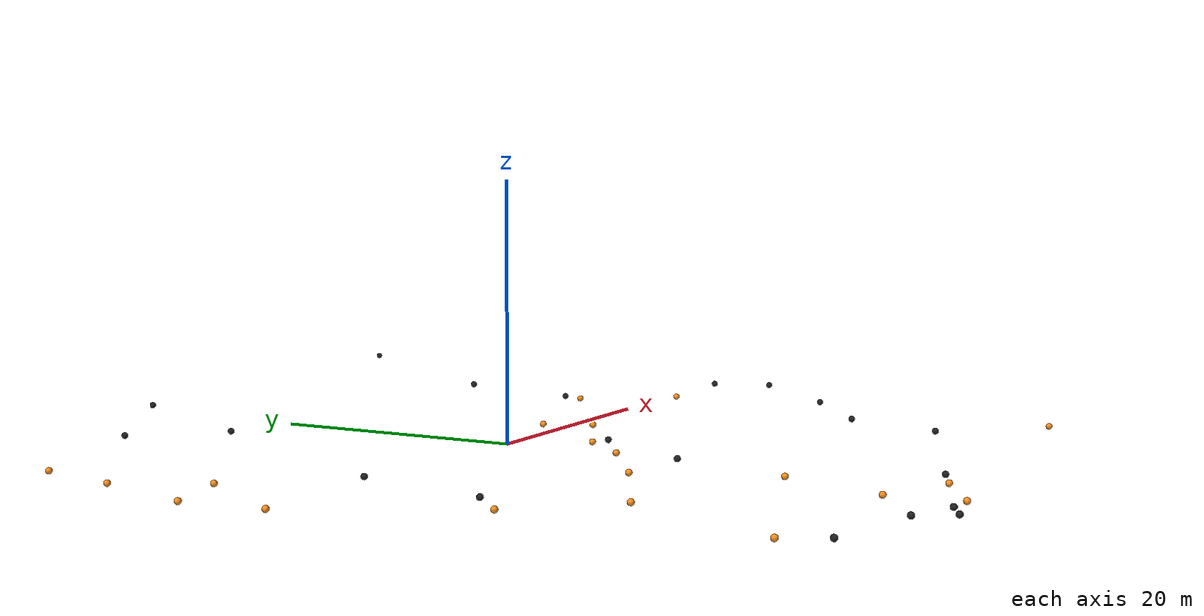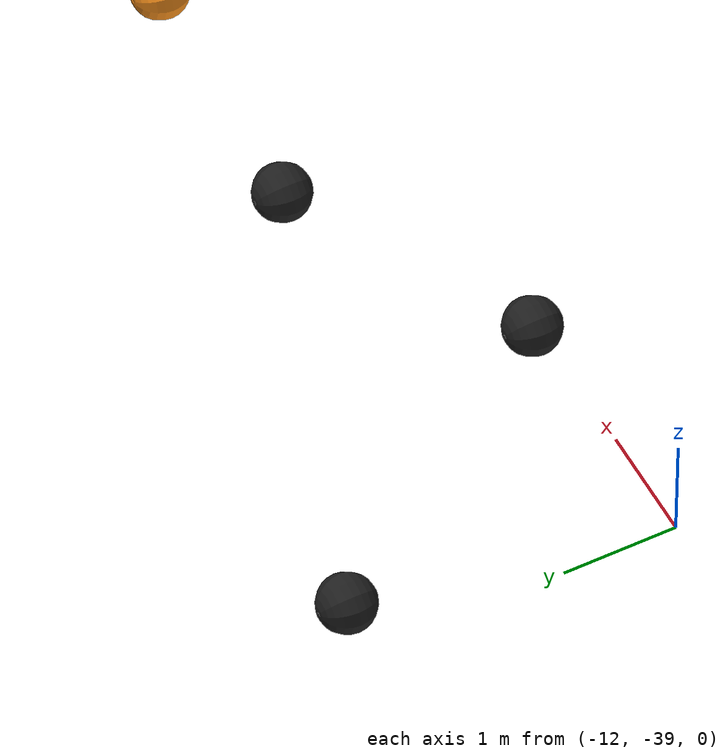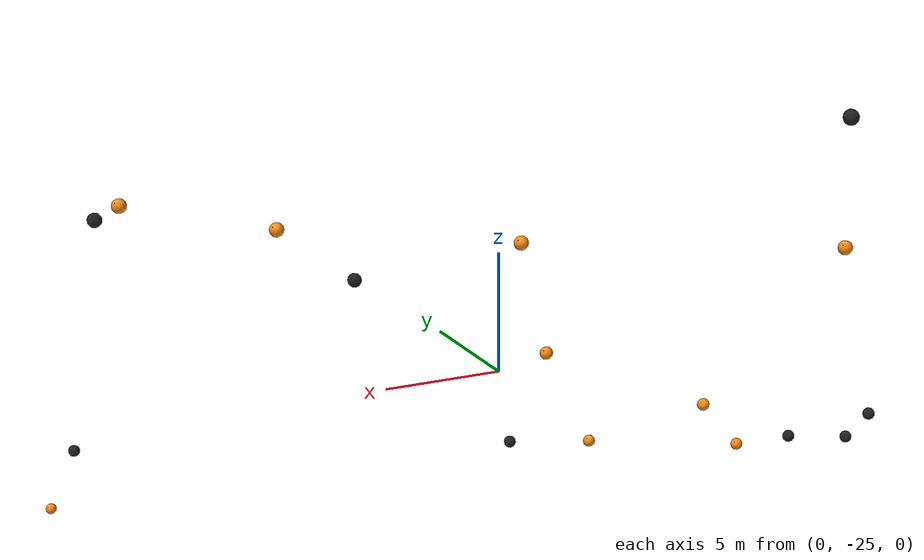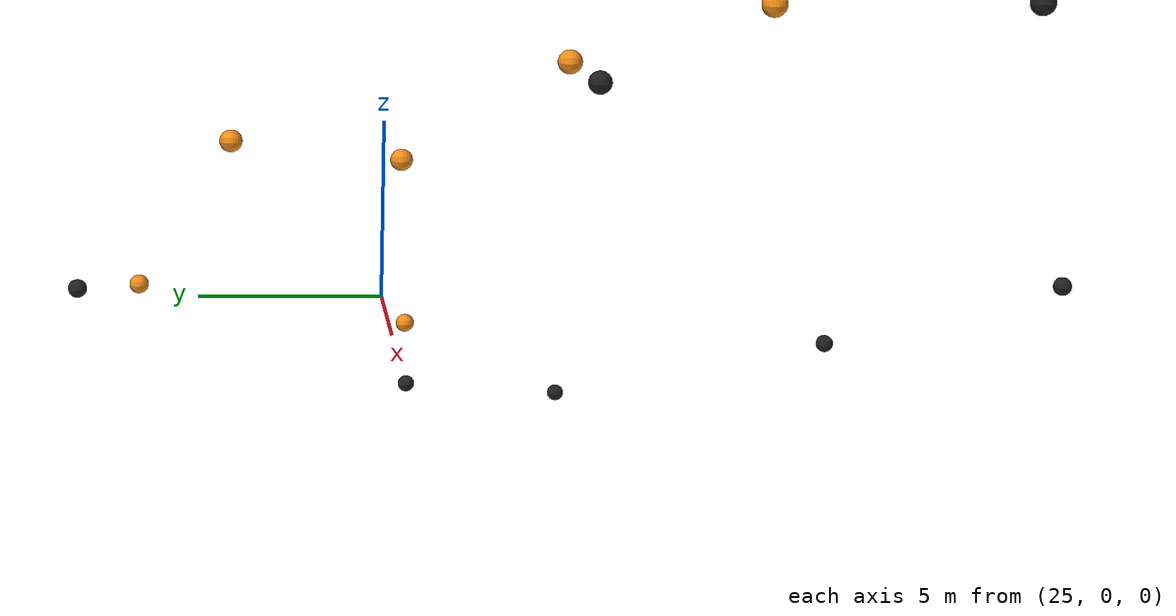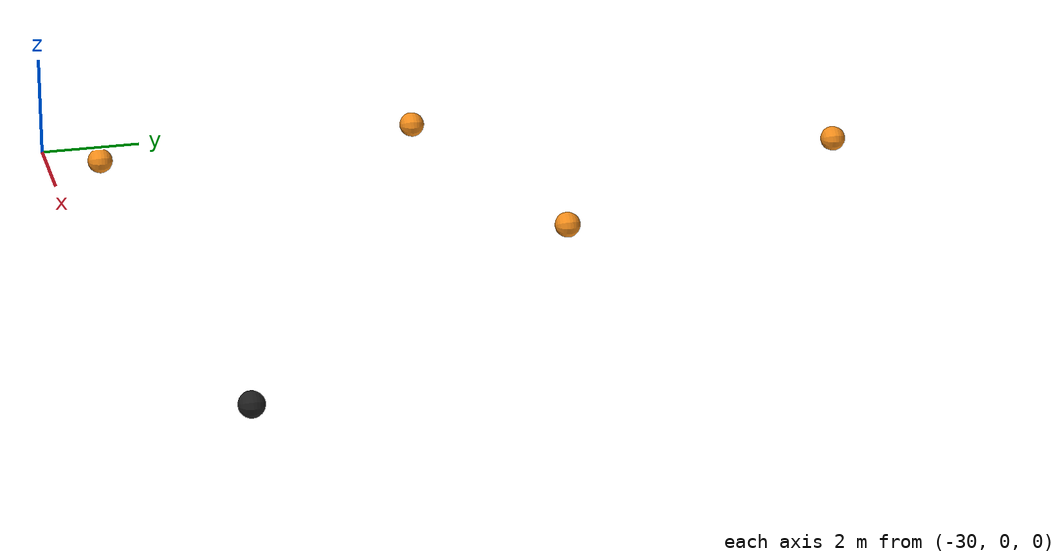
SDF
<?xml version="1.0"?>
<!-- automatically generated by the 'generate_avoid_obstacles_buoys.py' script -->
<sdf version="1.6">
  <model name="obstacles_phase2_3">
    <include>
      <name>mb_round_buoy_orange_0</name>
      <pose>-5.120407828639699 -37.925901453768695 0.0 0 0 0 </pose>
      <uri>model://mb_round_buoy_orange</uri>
    </include>

    <include>
      <name>mb_round_buoy_orange_1</name>
      <pose>3.9729982302967315 -5.174208590537852 0.0 0 0 0 </pose>
      <uri>model://mb_round_buoy_orange</uri>
    </include>

    <include>
      <name>mb_round_buoy_orange_2</name>
      <pose>-6.370575833000878 -13.57321431969007 0.0 0 0 0 </pose>
      <uri>model://mb_round_buoy_orange</uri>
    </include>

    <include>
      <name>mb_round_buoy_orange_3</name>
      <pose>-23.6281092769726 9.541677308053096 0.0 0 0 0 </pose>
      <uri>model://mb_round_buoy_orange</uri>
    </include>

    <include>
      <name>mb_round_buoy_orange_4</name>
      <pose>-16.02762610603815 -18.65381799177067 0.0 0 0 0 </pose>
      <uri>model://mb_round_buoy_orange</uri>
    </include>

    <include>
      <name>mb_round_buoy_orange_5</name>
      <pose>9.69070662154359 2.3313675421631217 0.0 0 0 0 </pose>
      <uri>model://mb_round_buoy_orange</uri>
    </include>

    <include>
      <name>mb_round_buoy_orange_6</name>
      <pose>-29.233604372405317 1.0862497012597174 0.0 0 0 0 </pose>
      <uri>model://mb_round_buoy_orange</uri>
    </include>

    <include>
      <name>mb_round_buoy_orange_7</name>
      <pose>-25.244810748246778 22.826811825333877 0.0 0 0 0 </pose>
      <uri>model://mb_round_buoy_orange</uri>
    </include>

    <include>
      <name>mb_round_buoy_orange_8</name>
      <pose>28.318023411159103 -0.4610530094457772 0.0 0 0 0 </pose>
      <uri>model://mb_round_buoy_orange</uri>
    </include>

    <include>
      <name>mb_round_buoy_orange_9</name>
      <pose>27.72491882859744 -33.62836183927512 0.0 0 0 0 </pose>
      <uri>model://mb_round_buoy_orange</uri>
    </include>

    <include>
      <name>mb_round_buoy_orange_10</name>
      <pose>0.4196872097363169 -34.77707964904975 0.0 0 0 0 </pose>
      <uri>model://mb_round_buoy_orange</uri>
    </include>

    <include>
      <name>mb_round_buoy_orange_11</name>
      <pose>-5.7502137922088465 -32.27752674715099 0.0 0 0 0 </pose>
      <uri>model://mb_round_buoy_orange</uri>
    </include>

    <include>
      <name>mb_round_buoy_orange_12</name>
      <pose>-29.827202263897803 7.739624718287665 0.0 0 0 0 </pose>
      <uri>model://mb_round_buoy_orange</uri>
    </include>

    <include>
      <name>mb_round_buoy_orange_13</name>
      <pose>-21.91903995166113 -31.444345255201362 0.0 0 0 0 </pose>
      <uri>model://mb_round_buoy_orange</uri>
    </include>

    <include>
      <name>mb_round_buoy_orange_14</name>
      <pose>-22.375503434355224 -12.013897199736057 0.0 0 0 0 </pose>
      <uri>model://mb_round_buoy_orange</uri>
    </include>

    <include>
      <name>mb_round_buoy_orange_15</name>
      <pose>-2.5770012334159844 -23.860541898802772 0.0 0 0 0 </pose>
      <uri>model://mb_round_buoy_orange</uri>
    </include>

    <include>
      <name>mb_round_buoy_orange_16</name>
      <pose>11.232538017193185 -1.3544131558598664 0.0 0 0 0 </pose>
      <uri>model://mb_round_buoy_orange</uri>
    </include>

    <include>
      <name>mb_round_buoy_orange_17</name>
      <pose>0.41893760148393255 -9.048587910515256 0.0 0 0 0 </pose>
      <uri>model://mb_round_buoy_orange</uri>
    </include>

    <include>
      <name>mb_round_buoy_orange_18</name>
      <pose>23.490996355326168 6.40033431022453 0.0 0 0 0 </pose>
      <uri>model://mb_round_buoy_orange</uri>
    </include>

    <include>
      <name>mb_round_buoy_orange_19</name>
      <pose>-27.016112119814892 16.0601877285725 0.0 0 0 0 </pose>
      <uri>model://mb_round_buoy_orange</uri>
    </include>

    <include>
      <name>mb_round_buoy_black_0</name>
      <pose>37.16408640714042 0.0006688936173375737 0.0 0 0 0 </pose>
      <uri>model://mb_round_buoy_black</uri>
    </include>

    <include>
      <name>mb_round_buoy_black_1</name>
      <pose>31.1616051156916 -12.670907786311226 0.0 0 0 0 </pose>
      <uri>model://mb_round_buoy_black</uri>
    </include>

    <include>
      <name>mb_round_buoy_black_2</name>
      <pose>5.37153021021674 -5.796322936311199 0.0 0 0 0 </pose>
      <uri>model://mb_round_buoy_black</uri>
    </include>

    <include>
      <name>mb_round_buoy_black_3</name>
      <pose>-5.06021895785608 22.12473479976802 0.0 0 0 0 </pose>
      <uri>model://mb_round_buoy_black</uri>
    </include>

    <include>
      <name>mb_round_buoy_black_4</name>
      <pose>2.8483338798125075 36.29937815558934 0.0 0 0 0 </pose>
      <uri>model://mb_round_buoy_black</uri>
    </include>

    <include>
      <name>mb_round_buoy_black_5</name>
      <pose>3.536652811848171 -33.432406217998015 0.0 0 0 0 </pose>
      <uri>model://mb_round_buoy_black</uri>
    </include>

    <include>
      <name>mb_round_buoy_black_6</name>
      <pose>-10.692607865998369 28.06804032036014 0.0 0 0 0 </pose>
      <uri>model://mb_round_buoy_black</uri>
    </include>

    <include>
      <name>mb_round_buoy_black_7</name>
      <pose>-7.497996556163933 -37.823810728412035 0.0 0 0 0 </pose>
      <uri>model://mb_round_buoy_black</uri>
    </include>

    <include>
      <name>mb_round_buoy_black_8</name>
      <pose>-20.225820880211735 -34.628450341043624 0.0 0 0 0 </pose>
      <uri>model://mb_round_buoy_black</uri>
    </include>

    <include>
      <name>mb_round_buoy_black_9</name>
      <pose>39.50816091370183 37.646425070173876 0.0 0 0 0 </pose>
      <uri>model://mb_round_buoy_black</uri>
    </include>

    <include>
      <name>mb_round_buoy_black_10</name>
      <pose>24.020668090606947 8.145369712437393 0.0 0 0 0 </pose>
      <uri>model://mb_round_buoy_black</uri>
    </include>

    <include>
      <name>mb_round_buoy_black_11</name>
      <pose>21.196788836134523 -26.461964273265764 0.0 0 0 0 </pose>
      <uri>model://mb_round_buoy_black</uri>
    </include>

    <include>
      <name>mb_round_buoy_black_12</name>
      <pose>-16.558141454444815 1.925350024029136 0.0 0 0 0 </pose>
      <uri>model://mb_round_buoy_black</uri>
    </include>

    <include>
      <name>mb_round_buoy_black_13</name>
      <pose>-11.470057510179288 -36.345682780367994 0.0 0 0 0 </pose>
      <uri>model://mb_round_buoy_black</uri>
    </include>

    <include>
      <name>mb_round_buoy_black_14</name>
      <pose>38.652275628577016 -4.691606451612259 0.0 0 0 0 </pose>
      <uri>model://mb_round_buoy_black</uri>
    </include>

    <include>
      <name>mb_round_buoy_black_15</name>
      <pose>0.32003515033220964 -14.116694597224093 0.0 0 0 0 </pose>
      <uri>model://mb_round_buoy_black</uri>
    </include>

    <include>
      <name>mb_round_buoy_black_16</name>
      <pose>-19.220419780229037 -9.048809174339006 0.0 0 0 0 </pose>
      <uri>model://mb_round_buoy_black</uri>
    </include>

    <include>
      <name>mb_round_buoy_black_17</name>
      <pose>26.56135197076007 18.939764502969034 0.0 0 0 0 </pose>
      <uri>model://mb_round_buoy_black</uri>
    </include>

    <include>
      <name>mb_round_buoy_black_18</name>
      <pose>-9.663154644669003 -38.95861306443595 0.0 0 0 0 </pose>
      <uri>model://mb_round_buoy_black</uri>
    </include>

    <include>
      <name>mb_round_buoy_black_19</name>
      <pose>23.792395122607488 -18.448896192295905 0.0 0 0 0 </pose>
      <uri>model://mb_round_buoy_black</uri>
    </include>

  </model>

</sdf>

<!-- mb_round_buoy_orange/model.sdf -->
<sdf version="1.6">
  <model name="mb_round_buoy_orange">
    <link name="link">
      <inertial>
        <pose>0 0 -2 0 0 0</pose>
        <!-- Mass determined based on buoyancy geometry so object
             floats at mid-point of sphere -->
        <mass>3.5</mass>
        <!-- Mark only - based on cylinder -->
        <inertia>
          <ixx>1.0</ixx>
          <ixy>0</ixy>
          <ixz>0</ixz>
          <iyy>1.0</iyy>
          <iyz>0</iyz>
          <izz>0.1</izz>
        </inertia>
      </inertial>
      <collision name="collision">
        <geometry>
          <sphere>
            <radius>0.25</radius>
          </sphere>
        </geometry>
      </collision>
      <visual name="visual">
        <geometry>
	        <mesh><uri>model://mb_round_buoy_orange/meshes/mb_round_buoy.dae</uri></mesh>
        </geometry>
        <material>
          <script>
            <uri>model://mb_round_buoy_orange/materials/scripts/mb_round_buoy.material</uri>
            <name>mb_round_buoy/Orange</name>
          </script>
        </material>
      </visual>
    </link>
    <plugin name="BuoyancyPlugin" filename="libbuoyancy_gazebo_plugin.so">
      <wave_model>ocean_waves</wave_model>
      <fluid_density>1000</fluid_density>
      <fluid_level>0.0</fluid_level>
      <linear_drag>25.0</linear_drag>
      <angular_drag>2.0</angular_drag>
      <buoyancy name="buoyancy_sphere">
        <link_name>link</link_name>
        <pose>0 0 0.02 0 0 0</pose>
        <geometry>
          <sphere>
            <radius>0.235</radius>
          </sphere>
        </geometry>
      </buoyancy>
    </plugin>
  </model>
</sdf>

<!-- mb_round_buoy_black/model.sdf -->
<sdf version="1.6">
  <model name="mb_round_buoy_black">
    <link name="link">
      <inertial>
        <pose>0 0 -2 0 0 0</pose>
        <!-- Mass determined based on buoyancy geometry so object
             floats at mid-point of sphere -->
        <mass>3.5</mass>
        <!-- Mark only - based on cylinder -->
        <inertia>
          <ixx>1.0</ixx>
          <ixy>0</ixy>
          <ixz>0</ixz>
          <iyy>1.0</iyy>
          <iyz>0</iyz>
          <izz>0.1</izz>
        </inertia>
      </inertial>
      <collision name="collision">
        <geometry>
          <sphere>
            <radius>0.25</radius>
          </sphere>
        </geometry>
      </collision>
      <visual name="visual">
        <geometry>
	        <mesh><uri>model://mb_round_buoy_orange/meshes/mb_round_buoy.dae</uri></mesh>
        </geometry>
        <material>
          <script>
            <uri>file://media/materials/scripts/gazebo.material</uri>
            <name>Gazebo/Black</name>
          </script>
        </material>
      </visual>
    </link>
    <plugin name="BuoyancyPlugin" filename="libbuoyancy_gazebo_plugin.so">
      <wave_model>ocean_waves</wave_model>
      <fluid_density>1000</fluid_density>
      <fluid_level>0.0</fluid_level>
      <linear_drag>25.0</linear_drag>
      <angular_drag>2.0</angular_drag>
      <buoyancy name="buoyancy_sphere">
        <link_name>link</link_name>
        <pose>0 0 0.02 0 0 0</pose>
        <geometry>
          <sphere>
            <radius>0.235</radius>
          </sphere>
        </geometry>
      </buoyancy>
    </plugin>
  </model>
</sdf>
